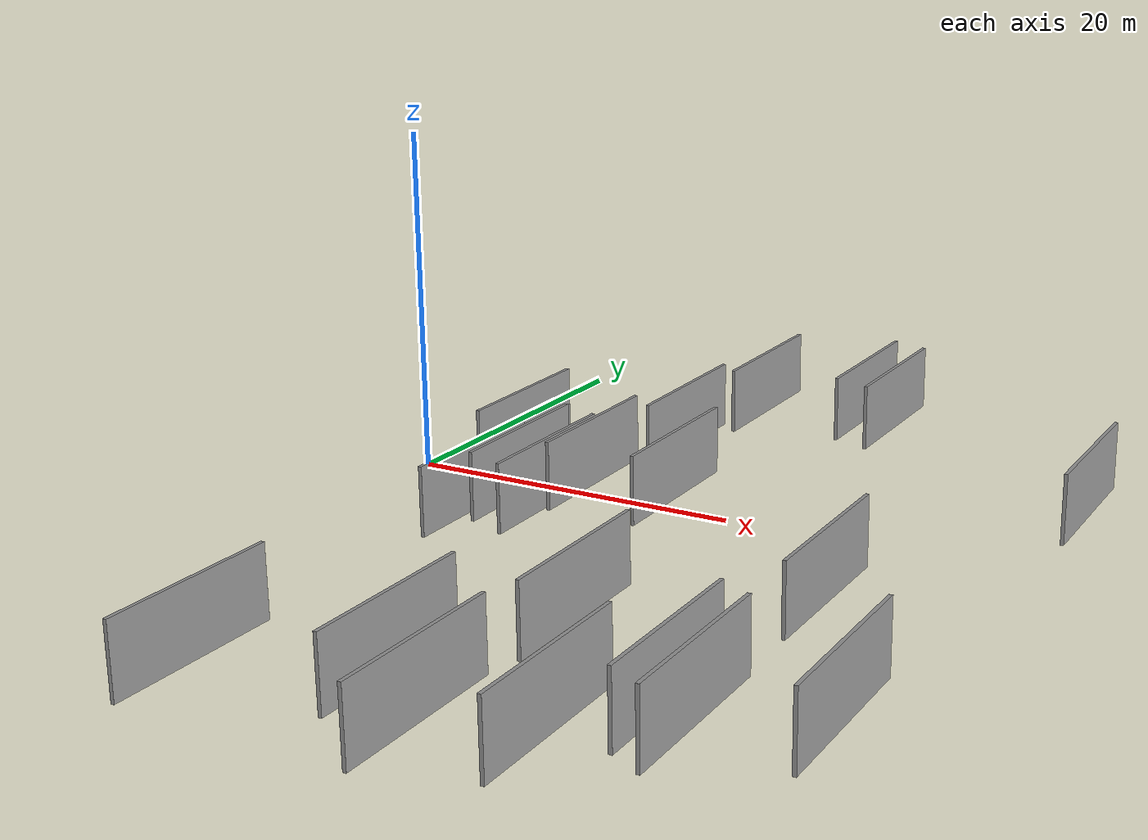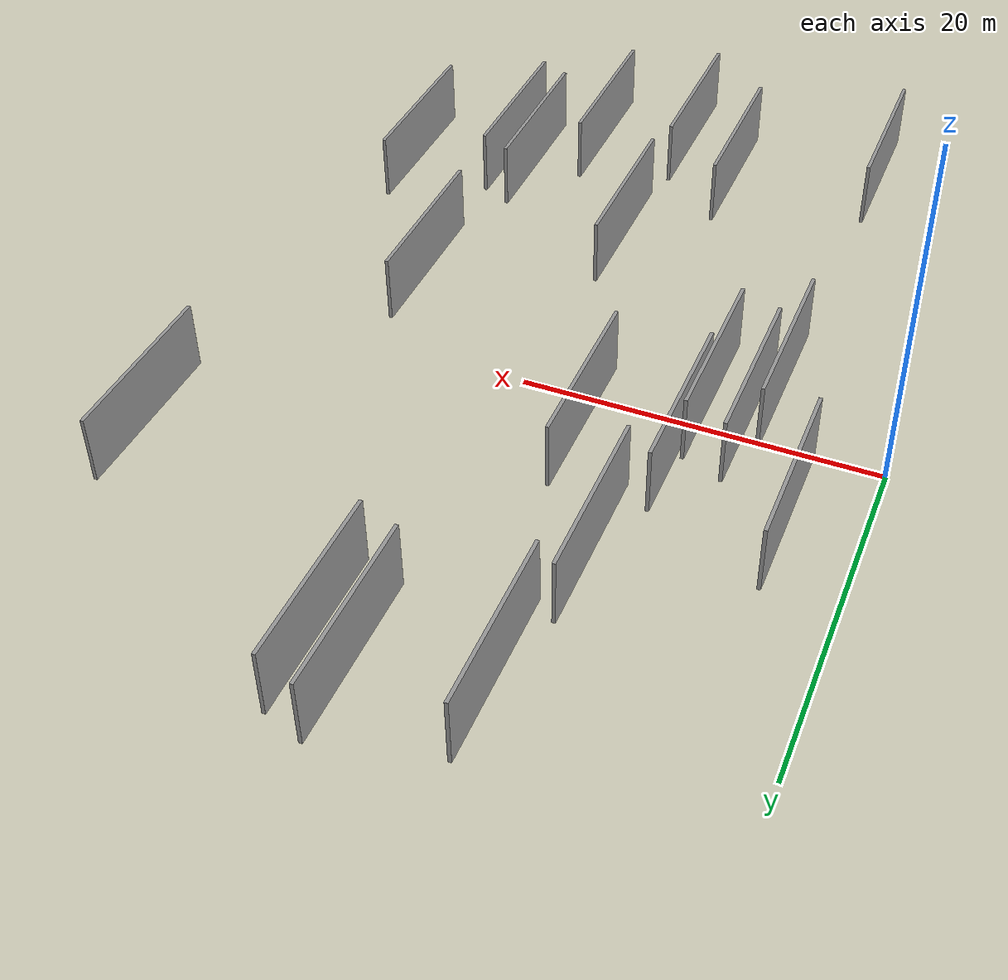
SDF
<sdf version="1.6">
 <world name="default">
  <scene>
   <sky><clouds><speed>12</speed></clouds></sky>
   <ambient>0.4 0.4 0.4 1</ambient>
   <background>0.7 0.7 0.7 1</background>
   <shadows>1</shadows>
  </scene>
  <gravity>0 0 -9.8066</gravity>
  <magnetic_field>6e-06 2.3e-05 -4.2e-05</magnetic_field>
  <physics default="0" name="default_physics" type="ode">
   <ode>
    <solver>
     <type>quick</type>
     <iters>10</iters>
     <sor>1.0</sor>
     <use_dynamic_moi_rescaling>0</use_dynamic_moi_rescaling>
    </solver>
    <constraints>
     <cfm>0</cfm>
     <erp>0.2</erp>
     <contact_max_correcting_vel>100</contact_max_correcting_vel>
     <contact_surface_layer>0.001</contact_surface_layer>
    </constraints>
   </ode>
   <max_step_size>0.004</max_step_size>
   <real_time_factor>1</real_time_factor>
   <real_time_update_rate>250</real_time_update_rate>
  </physics>
  <light name="sun" type="directional">
   <pose>0 0 10 0 0 0</pose>
   <diffuse>0.8 0.8 0.8 1</diffuse>
   <specular>0.2 0.2 0.2 1</specular>
   <attenuation>
    <range>1000</range>
    <constant>0.9</constant>
    <linear>0.01</linear>
    <quadratic>0.001</quadratic>
   </attenuation>
   <direction>-0.5 0.1 -0.9</direction>
  </light>
  <model name="grey_wall_1">
   <static>1</static>
   <pose>24.5667 -25.2155 0.0 0.000000 0.000000 1.570796</pose>
   <link name="link">
    <pose>0 0 2.00 0 0 0</pose>
    <collision name="collision"><geometry><box><size>10.00 0.2 4.00</size></box></geometry></collision>
    <visual name="visual">
     <cast_shadows>0</cast_shadows>
     <geometry><box><size>10.00 0.2 4.00</size></box></geometry>
     <material>
      <script>
       <uri>model://grey_wall/materials/scripts</uri>
       <uri>model://grey_wall/materials/textures</uri>
       <name>vrc/grey_wall</name>
      </script>
     </material>
    </visual>
   </link>
  </model>
  <model name="grey_wall_2">
   <static>1</static>
   <pose>7.7499 -1.5978 0.0 0.000000 0.000000 1.570796</pose>
   <link name="link">
    <pose>0 0 2.00 0 0 0</pose>
    <collision name="collision"><geometry><box><size>10.00 0.2 4.00</size></box></geometry></collision>
    <visual name="visual">
     <cast_shadows>0</cast_shadows>
     <geometry><box><size>10.00 0.2 4.00</size></box></geometry>
     <material>
      <script>
       <uri>model://grey_wall/materials/scripts</uri>
       <uri>model://grey_wall/materials/textures</uri>
       <name>vrc/grey_wall</name>
      </script>
     </material>
    </visual>
   </link>
  </model>
  <model name="grey_wall_3">
   <static>1</static>
   <pose>10.1002 -2.4909 0.0 0.000000 0.000000 1.570796</pose>
   <link name="link">
    <pose>0 0 2.00 0 0 0</pose>
    <collision name="collision"><geometry><box><size>10.00 0.2 4.00</size></box></geometry></collision>
    <visual name="visual">
     <cast_shadows>0</cast_shadows>
     <geometry><box><size>10.00 0.2 4.00</size></box></geometry>
     <material>
      <script>
       <uri>model://grey_wall/materials/scripts</uri>
       <uri>model://grey_wall/materials/textures</uri>
       <name>vrc/grey_wall</name>
      </script>
     </material>
    </visual>
   </link>
  </model>
  <model name="grey_wall_4">
   <static>1</static>
   <pose>29.5255 -21.5609 0.0 0.000000 0.000000 1.570796</pose>
   <link name="link">
    <pose>0 0 2.00 0 0 0</pose>
    <collision name="collision"><geometry><box><size>10.00 0.2 4.00</size></box></geometry></collision>
    <visual name="visual">
     <cast_shadows>0</cast_shadows>
     <geometry><box><size>10.00 0.2 4.00</size></box></geometry>
     <material>
      <script>
       <uri>model://grey_wall/materials/scripts</uri>
       <uri>model://grey_wall/materials/textures</uri>
       <name>vrc/grey_wall</name>
      </script>
     </material>
    </visual>
   </link>
  </model>
  <model name="grey_wall_5">
   <static>1</static>
   <pose>6.5505 -26.9354 0.0 0.000000 0.000000 1.570796</pose>
   <link name="link">
    <pose>0 0 2.00 0 0 0</pose>
    <collision name="collision"><geometry><box><size>10.00 0.2 4.00</size></box></geometry></collision>
    <visual name="visual">
     <cast_shadows>0</cast_shadows>
     <geometry><box><size>10.00 0.2 4.00</size></box></geometry>
     <material>
      <script>
       <uri>model://grey_wall/materials/scripts</uri>
       <uri>model://grey_wall/materials/textures</uri>
       <name>vrc/grey_wall</name>
      </script>
     </material>
    </visual>
   </link>
  </model>
  <model name="grey_wall_6">
   <static>1</static>
   <pose>6.7507 -4.8090 0.0 0.000000 0.000000 1.570796</pose>
   <link name="link">
    <pose>0 0 2.00 0 0 0</pose>
    <collision name="collision"><geometry><box><size>10.00 0.2 4.00</size></box></geometry></collision>
    <visual name="visual">
     <cast_shadows>0</cast_shadows>
     <geometry><box><size>10.00 0.2 4.00</size></box></geometry>
     <material>
      <script>
       <uri>model://grey_wall/materials/scripts</uri>
       <uri>model://grey_wall/materials/textures</uri>
       <name>vrc/grey_wall</name>
      </script>
     </material>
    </visual>
   </link>
  </model>
  <model name="grey_wall_7">
   <static>1</static>
   <pose>22.0071 19.9481 0.0 0.000000 0.000000 1.570796</pose>
   <link name="link">
    <pose>0 0 2.00 0 0 0</pose>
    <collision name="collision"><geometry><box><size>10.00 0.2 4.00</size></box></geometry></collision>
    <visual name="visual">
     <cast_shadows>0</cast_shadows>
     <geometry><box><size>10.00 0.2 4.00</size></box></geometry>
     <material>
      <script>
       <uri>model://grey_wall/materials/scripts</uri>
       <uri>model://grey_wall/materials/textures</uri>
       <name>vrc/grey_wall</name>
      </script>
     </material>
    </visual>
   </link>
  </model>
  <model name="grey_wall_8">
   <static>1</static>
   <pose>13.3429 19.2277 0.0 0.000000 0.000000 1.570796</pose>
   <link name="link">
    <pose>0 0 2.00 0 0 0</pose>
    <collision name="collision"><geometry><box><size>10.00 0.2 4.00</size></box></geometry></collision>
    <visual name="visual">
     <cast_shadows>0</cast_shadows>
     <geometry><box><size>10.00 0.2 4.00</size></box></geometry>
     <material>
      <script>
       <uri>model://grey_wall/materials/scripts</uri>
       <uri>model://grey_wall/materials/textures</uri>
       <name>vrc/grey_wall</name>
      </script>
     </material>
    </visual>
   </link>
  </model>
  <model name="grey_wall_9">
   <static>1</static>
   <pose>19.1181 -26.9352 0.0 0.000000 0.000000 1.570796</pose>
   <link name="link">
    <pose>0 0 2.00 0 0 0</pose>
    <collision name="collision"><geometry><box><size>10.00 0.2 4.00</size></box></geometry></collision>
    <visual name="visual">
     <cast_shadows>0</cast_shadows>
     <geometry><box><size>10.00 0.2 4.00</size></box></geometry>
     <material>
      <script>
       <uri>model://grey_wall/materials/scripts</uri>
       <uri>model://grey_wall/materials/textures</uri>
       <name>vrc/grey_wall</name>
      </script>
     </material>
    </visual>
   </link>
  </model>
  <model name="grey_wall_10">
   <static>1</static>
   <pose>35.0830 -18.7914 0.0 0.000000 0.000000 1.570796</pose>
   <link name="link">
    <pose>0 0 2.00 0 0 0</pose>
    <collision name="collision"><geometry><box><size>10.00 0.2 4.00</size></box></geometry></collision>
    <visual name="visual">
     <cast_shadows>0</cast_shadows>
     <geometry><box><size>10.00 0.2 4.00</size></box></geometry>
     <material>
      <script>
       <uri>model://grey_wall/materials/scripts</uri>
       <uri>model://grey_wall/materials/textures</uri>
       <name>vrc/grey_wall</name>
      </script>
     </material>
    </visual>
   </link>
  </model>
  <model name="grey_wall_11">
   <static>1</static>
   <pose>3.8579 4.7792 0.0 0.000000 0.000000 1.570796</pose>
   <link name="link">
    <pose>0 0 2.00 0 0 0</pose>
    <collision name="collision"><geometry><box><size>10.00 0.2 4.00</size></box></geometry></collision>
    <visual name="visual">
     <cast_shadows>0</cast_shadows>
     <geometry><box><size>10.00 0.2 4.00</size></box></geometry>
     <material>
      <script>
       <uri>model://grey_wall/materials/scripts</uri>
       <uri>model://grey_wall/materials/textures</uri>
       <name>vrc/grey_wall</name>
      </script>
     </material>
    </visual>
   </link>
  </model>
  <model name="grey_wall_12">
   <static>1</static>
   <pose>37.3612 10.1698 0.0 0.000000 0.000000 1.570796</pose>
   <link name="link">
    <pose>0 0 2.00 0 0 0</pose>
    <collision name="collision"><geometry><box><size>10.00 0.2 4.00</size></box></geometry></collision>
    <visual name="visual">
     <cast_shadows>0</cast_shadows>
     <geometry><box><size>10.00 0.2 4.00</size></box></geometry>
     <material>
      <script>
       <uri>model://grey_wall/materials/scripts</uri>
       <uri>model://grey_wall/materials/textures</uri>
       <name>vrc/grey_wall</name>
      </script>
     </material>
    </visual>
   </link>
  </model>
  <model name="grey_wall_13">
   <static>1</static>
   <pose>15.8190 1.9647 0.0 0.000000 0.000000 1.570796</pose>
   <link name="link">
    <pose>0 0 2.00 0 0 0</pose>
    <collision name="collision"><geometry><box><size>10.00 0.2 4.00</size></box></geometry></collision>
    <visual name="visual">
     <cast_shadows>0</cast_shadows>
     <geometry><box><size>10.00 0.2 4.00</size></box></geometry>
     <material>
      <script>
       <uri>model://grey_wall/materials/scripts</uri>
       <uri>model://grey_wall/materials/textures</uri>
       <name>vrc/grey_wall</name>
      </script>
     </material>
    </visual>
   </link>
  </model>
  <model name="grey_wall_14">
   <static>1</static>
   <pose>10.5124 1.8065 0.0 0.000000 0.000000 1.570796</pose>
   <link name="link">
    <pose>0 0 2.00 0 0 0</pose>
    <collision name="collision"><geometry><box><size>10.00 0.2 4.00</size></box></geometry></collision>
    <visual name="visual">
     <cast_shadows>0</cast_shadows>
     <geometry><box><size>10.00 0.2 4.00</size></box></geometry>
     <material>
      <script>
       <uri>model://grey_wall/materials/scripts</uri>
       <uri>model://grey_wall/materials/textures</uri>
       <name>vrc/grey_wall</name>
      </script>
     </material>
    </visual>
   </link>
  </model>
  <model name="grey_wall_15">
   <static>1</static>
   <pose>12.1225 10.3259 0.0 0.000000 0.000000 1.570796</pose>
   <link name="link">
    <pose>0 0 2.00 0 0 0</pose>
    <collision name="collision"><geometry><box><size>10.00 0.2 4.00</size></box></geometry></collision>
    <visual name="visual">
     <cast_shadows>0</cast_shadows>
     <geometry><box><size>10.00 0.2 4.00</size></box></geometry>
     <material>
      <script>
       <uri>model://grey_wall/materials/scripts</uri>
       <uri>model://grey_wall/materials/textures</uri>
       <name>vrc/grey_wall</name>
      </script>
     </material>
    </visual>
   </link>
  </model>
  <model name="grey_wall_16">
   <static>1</static>
   <pose>19.6909 -15.1427 0.0 0.000000 0.000000 1.570796</pose>
   <link name="link">
    <pose>0 0 2.00 0 0 0</pose>
    <collision name="collision"><geometry><box><size>10.00 0.2 4.00</size></box></geometry></collision>
    <visual name="visual">
     <cast_shadows>0</cast_shadows>
     <geometry><box><size>10.00 0.2 4.00</size></box></geometry>
     <material>
      <script>
       <uri>model://grey_wall/materials/scripts</uri>
       <uri>model://grey_wall/materials/textures</uri>
       <name>vrc/grey_wall</name>
      </script>
     </material>
    </visual>
   </link>
  </model>
  <model name="grey_wall_17">
   <static>1</static>
   <pose>27.7307 -20.6768 0.0 0.000000 0.000000 1.570796</pose>
   <link name="link">
    <pose>0 0 2.00 0 0 0</pose>
    <collision name="collision"><geometry><box><size>10.00 0.2 4.00</size></box></geometry></collision>
    <visual name="visual">
     <cast_shadows>0</cast_shadows>
     <geometry><box><size>10.00 0.2 4.00</size></box></geometry>
     <material>
      <script>
       <uri>model://grey_wall/materials/scripts</uri>
       <uri>model://grey_wall/materials/textures</uri>
       <name>vrc/grey_wall</name>
      </script>
     </material>
    </visual>
   </link>
  </model>
  <model name="grey_wall_18">
   <static>1</static>
   <pose>15.2489 -23.7216 0.0 0.000000 0.000000 1.570796</pose>
   <link name="link">
    <pose>0 0 2.00 0 0 0</pose>
    <collision name="collision"><geometry><box><size>10.00 0.2 4.00</size></box></geometry></collision>
    <visual name="visual">
     <cast_shadows>0</cast_shadows>
     <geometry><box><size>10.00 0.2 4.00</size></box></geometry>
     <material>
      <script>
       <uri>model://grey_wall/materials/scripts</uri>
       <uri>model://grey_wall/materials/textures</uri>
       <name>vrc/grey_wall</name>
      </script>
     </material>
    </visual>
   </link>
  </model>
  <model name="grey_wall_19">
   <static>1</static>
   <pose>19.7417 20.7468 0.0 0.000000 0.000000 1.570796</pose>
   <link name="link">
    <pose>0 0 2.00 0 0 0</pose>
    <collision name="collision"><geometry><box><size>10.00 0.2 4.00</size></box></geometry></collision>
    <visual name="visual">
     <cast_shadows>0</cast_shadows>
     <geometry><box><size>10.00 0.2 4.00</size></box></geometry>
     <material>
      <script>
       <uri>model://grey_wall/materials/scripts</uri>
       <uri>model://grey_wall/materials/textures</uri>
       <name>vrc/grey_wall</name>
      </script>
     </material>
    </visual>
   </link>
  </model>
  <model name="grey_wall_20">
   <static>1</static>
   <pose>29.3044 -7.4618 0.0 0.000000 0.000000 1.570796</pose>
   <link name="link">
    <pose>0 0 2.00 0 0 0</pose>
    <collision name="collision"><geometry><box><size>10.00 0.2 4.00</size></box></geometry></collision>
    <visual name="visual">
     <cast_shadows>0</cast_shadows>
     <geometry><box><size>10.00 0.2 4.00</size></box></geometry>
     <material>
      <script>
       <uri>model://grey_wall/materials/scripts</uri>
       <uri>model://grey_wall/materials/textures</uri>
       <name>vrc/grey_wall</name>
      </script>
     </material>
    </visual>
   </link>
  </model>
 </world>
</sdf>
